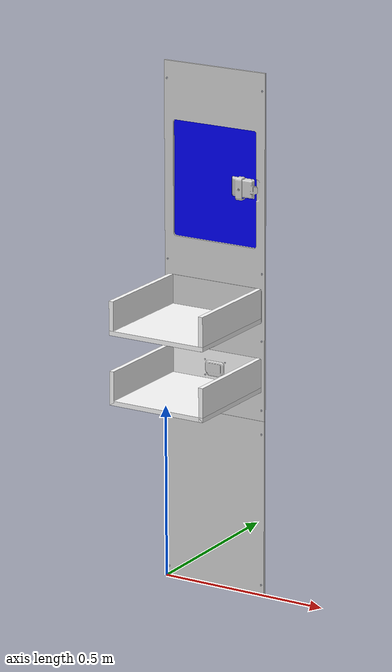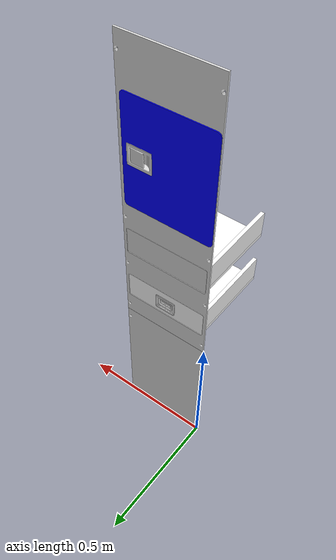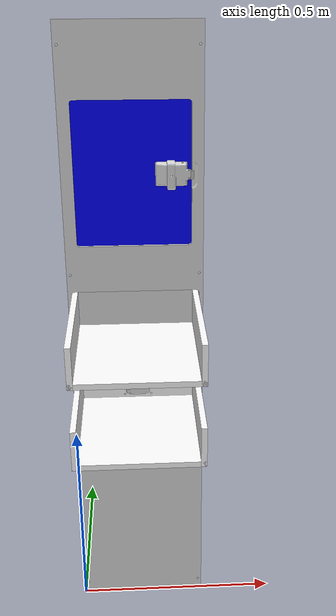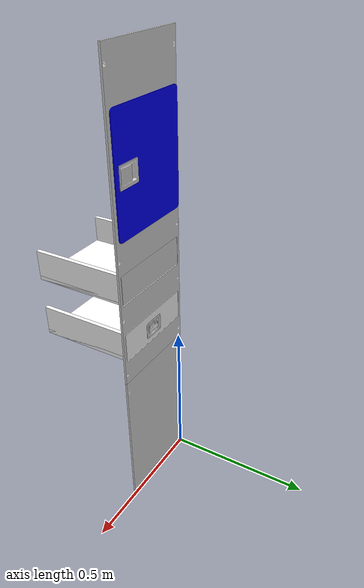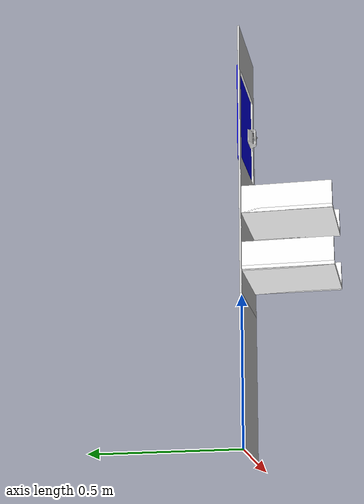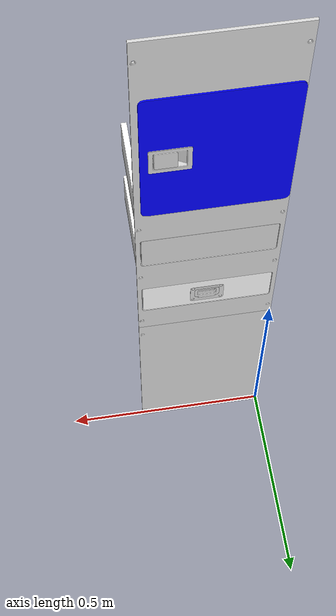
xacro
<?xml version="1.0"?>
<robot xmlns:xacro="http://wiki.ros.org/xacro" name="trainer_side">
  <xacro:arg name="prefix" default=""/>

  <xacro:include filename="$(find trainer)/urdf/colors.xacro"/>
  <xacro:include filename="$(find trainer)/urdf/trainer_side.xacro"/>

  <link name="world"/>

  <xacro:side_face prefix="$(arg prefix)" parent="world">
    <origin xyz="0 0 0" rpy="0 0 0"/>
  </xacro:side_face>

</robot>

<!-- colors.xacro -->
<robot xmlns:xacro="http://wiki.ros.org/xacro" name="trainer_side">

  <material name="red">
    <color rgba="1.0 0 0 1"/>
  </material>

  <material name="green">
    <color rgba="0 1.0 0 1"/>
  </material>

  <material name="blue">
    <color rgba="0 0 1.0 1"/>
  </material>

  <material name="gray">
    <color rgba="0.85 0.85 0.85 1.0"/>
  </material>

  <material name="white">
    <color rgba="1.0 1.0 1.0 1.0"/>
  </material>

</robot>

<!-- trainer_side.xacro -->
<robot xmlns:xacro="http://wiki.ros.org/xacro">

  <xacro:macro name="side_face" params="
    prefix:=''
    parent:=''
    *origin">

    <joint name="${prefix}trainer_side_face_base_joint" type="fixed">
      <parent link="${parent}"/>
      <child link="${prefix}side_bottom_face"/>
      <xacro:insert_block name="origin"/>
    </joint>

    <link name="${prefix}side_bottom_face">
      <!--TODO set proper inertia-->
      <inertial>
        <origin rpy="0 0 0" xyz="0.0 0.0 0.0"/>
        <mass value="0.1"/>
        <inertia ixx="0.1" ixy="0.0" ixz="0.0" iyy="0.1" iyz="0.0" izz="0.1"/>
      </inertial>
      <visual>
        <origin xyz="0.0 0.0 0.0" rpy="0 0 0"/>
        <geometry>
          <mesh filename="package://trainer/meshes/visual/side_bottom_face.stl"/>
        </geometry>
        <material name="gray"/>
      </visual>
      <collision>
        <origin xyz="0.0 0.0 0.0" rpy="0 0 0"/>
          <geometry>
            <mesh filename="package://trainer/meshes/collision/side_bottom_face.stl"/>
          </geometry>
        <material name="red"/>
      </collision>
    </link>

    <joint name="${prefix}side_top_face_joint" type="fixed">
      <parent link="${prefix}side_bottom_face"/>
      <child link="${prefix}side_top_face"/>
      <origin xyz="0.0 0.0 0.5084191" rpy="0 0 0"/>
    </joint>

    <link name="${prefix}side_top_face">
      <!--TODO set proper inertia-->
      <inertial>
        <origin rpy="0 0 0" xyz="0.0 0.0 0.0"/>
        <mass value="0.1"/>
        <inertia ixx="0.1" ixy="0.0" ixz="0.0" iyy="0.1" iyz="0.0" izz="0.1"/>
      </inertial>
      <visual>
        <origin xyz="0.0 0.0 0.0" rpy="0 0 0"/>
        <geometry>
          <mesh filename="package://trainer/meshes/visual/side_top_face.stl"/>
        </geometry>
        <material name="gray"/>
      </visual>
      <collision>
        <origin xyz="0.0 0.0 0.0" rpy="0 0 0"/>
          <geometry>
            <mesh filename="package://trainer/meshes/collision/side_top_face.stl"/>
          </geometry>
        <material name="red"/>
      </collision>
    </link>

  <joint name="${prefix}cabinet_4_joint" type="revolute">
    <axis xyz="0 0 1"/>
    <limit effort="10.0" lower="0.0" upper="3.14" velocity="0.5"/>
    <parent link="${prefix}side_top_face"/>
    <child link="${prefix}cabinet_4"/>
    <origin xyz="-0.0018 0.017 0.484" rpy="0 0 0"/>
    <dynamics friction="3.0" damping="3.0"/>
  </joint>

  <link name="${prefix}cabinet_4">
    <!--TODO set proper inertia-->
    <inertial>
      <origin rpy="0 0 0" xyz="0.0 0.0 0.0"/>
      <mass value="0.1"/>
      <inertia ixx="0.1" ixy="0.0" ixz="0.0" iyy="0.1" iyz="0.0" izz="0.1"/>
    </inertial>
    <visual>
      <origin xyz="0.00305 -0.0106 0.0" rpy="0 0 0"/>
      <geometry>
        <mesh filename="package://trainer/meshes/visual/cabinet_door_4.stl"/>
      </geometry>
      <material name="blue"/>
    </visual>
    <collision>
      <origin xyz="0.00305 -0.0106 0.0" rpy="0 0 0"/>
      <geometry>
        <mesh filename="package://trainer/meshes/collision/cabinet_door_4.stl"/>
      </geometry>
      <material name="red"/>
    </collision>
  </link>

  <joint name="${prefix}paddle_latch_housing_joint" type="fixed">
    <parent link="${prefix}cabinet_4"/>
    <child link="${prefix}paddle_latch_housing"/>
    <origin xyz="0.2043 -0.007 0.1313" rpy="0 0 0"/>
  </joint>

  <link name="${prefix}paddle_latch_housing">
    <!--TODO set proper inertia-->
    <inertial>
      <origin rpy="0 0 0" xyz="0.0 0.0 0.0"/>
      <mass value="0.1"/>
      <inertia ixx="0.1" ixy="0.0" ixz="0.0" iyy="0.1" iyz="0.0" izz="0.1"/>
    </inertial>
    <visual>
      <origin xyz="0.00305 0.0 0.00305" rpy="0 0 0"/>
      <geometry>
        <mesh filename="package://trainer/meshes/visual/paddle_latch_housing.stl"/>
      </geometry>
      <material name="gray"/>
    </visual>
    <collision>
      <origin xyz="0.00305 0.0 0.00305" rpy="0 0 0"/>
      <geometry>
        <mesh filename="package://trainer/meshes/collision/paddle_latch_housing.stl"/>
      </geometry>
      <material name="red"/>
    </collision>
  </link>

  <joint name="${prefix}paddle_latch_handle_joint" type="revolute">
    <axis xyz="0 0 -1"/>
    <limit effort="10.0" lower="0.0" upper="0.785375" velocity="0.5"/>
    <parent link="${prefix}paddle_latch_housing"/>
    <child link="${prefix}paddle_latch_handle"/>
    <origin xyz="0.06693 -0.003531 0.0107" rpy="0 0 0"/>
    <dynamics friction="3.0" damping="3.0"/>
  </joint>

  <link name="${prefix}paddle_latch_handle">
    <!--TODO set proper inertia-->
    <inertial>
      <origin rpy="0 0 0" xyz="0.0 0.0 0.0"/>
      <mass value="0.1"/>
      <inertia ixx="0.1" ixy="0.0" ixz="0.0" iyy="0.1" iyz="0.0" izz="0.1"/>
    </inertial>
    <visual>
      <origin xyz="0.0 0.0 0.0" rpy="0 0 0"/>
      <geometry>
        <mesh filename="package://trainer/meshes/visual/paddle_latch_handle.stl"/>
      </geometry>
      <material name="gray"/>
    </visual>
    <collision>
      <origin xyz="0.0 0.0 0.0" rpy="0 0 0"/>
      <geometry>
        <mesh filename="package://trainer/meshes/collision/paddle_latch_handle.stl"/>
      </geometry>
      <material name="red"/>
    </collision>
  </link>

  <joint name="${prefix}drawer_1_joint" type="prismatic">
    <axis xyz="0 1 0"/>
    <limit effort="10.0" lower="0.0" upper="0.305" velocity="0.5"/>
    <parent link="${prefix}side_top_face"/>
    <child link="${prefix}drawer_1_face"/>
    <origin xyz="0.011 0.003 0.283" rpy="0 0 0"/>
    <dynamics friction="3.0" damping="3.0"/>
  </joint>

  <link name="${prefix}drawer_1_face">
    <!--TODO set proper inertia-->
    <inertial>
      <origin rpy="0 0 0" xyz="0.0 0.0 0.0"/>
      <mass value="0.1"/>
      <inertia ixx="0.1" ixy="0.0" ixz="0.0" iyy="0.1" iyz="0.0" izz="0.1"/>
    </inertial>
    <visual>
      <origin xyz="0.0 0.0 0.0" rpy="0 0 0"/>
      <geometry>
        <mesh filename="package://trainer/meshes/visual/drawer_1_face.stl"/>
      </geometry>
      <material name="gray"/>
    </visual>
    <collision>
      <origin xyz="0.0 0.0 0.0" rpy="0 0 0"/>
      <geometry>
        <mesh filename="package://trainer/meshes/collision/drawer_1_face.stl"/>
      </geometry>
      <material name="red"/>
    </collision>
  </link>

  <joint name="${prefix}drawer_1_left_joint" type="fixed">
    <parent link="${prefix}drawer_1_face"/>
    <child link="${prefix}drawer_1_left"/>
    <origin xyz="${0.293 - 0.013} -0.305 -0.00435" rpy="0 0 0"/>
  </joint>

  <link name="${prefix}drawer_1_left">
    <!--TODO set proper inertia-->
    <inertial>
      <origin rpy="0 0 0" xyz="0.0 0.0 0.0"/>
      <mass value="0.1"/>
      <inertia ixx="0.1" ixy="0.0" ixz="0.0" iyy="0.1" iyz="0.0" izz="0.1"/>
    </inertial>
    <visual>
      <origin xyz="${0.013/2} ${0.305/2} ${0.096/2}" rpy="0 0 0"/>
      <geometry>
        <box size="0.013 0.305 0.096"/>
      </geometry>
      <material name="white"/>
    </visual>
    <collision>
      <origin xyz="${0.013/2} ${0.305/2} ${0.096/2}" rpy="0 0 0"/>
      <geometry>
        <box size="0.013 0.305 0.096"/>
      </geometry>
      <material name="red"/>
    </collision>
  </link>

  <joint name="${prefix}drawer_1_right_joint" type="fixed">
    <parent link="${prefix}drawer_1_face"/>
    <child link="${prefix}drawer_1_right"/>
    <origin xyz="0.0 -0.305 -0.00435" rpy="0 0 0"/>
  </joint>

  <link name="${prefix}drawer_1_right">
    <!--TODO set proper inertia-->
    <inertial>
      <origin rpy="0 0 0" xyz="0.0 0.0 0.0"/>
      <mass value="0.1"/>
      <inertia ixx="0.1" ixy="0.0" ixz="0.0" iyy="0.1" iyz="0.0" izz="0.1"/>
    </inertial>
    <visual>
      <origin xyz="${0.013/2} ${0.305/2} ${0.096/2}" rpy="0 0 0"/>
      <geometry>
        <box size="0.013 0.305 0.096"/>
      </geometry>
      <material name="white"/>
    </visual>
    <collision>
      <origin xyz="${0.013/2} ${0.305/2} ${0.096/2}" rpy="0 0 0"/>
      <geometry>
        <box size="0.013 0.305 0.096"/>
      </geometry>
      <material name="red"/>
    </collision>
  </link>

  <joint name="${prefix}drawer_1_bottom_joint" type="fixed">
    <parent link="${prefix}drawer_1_face"/>
    <child link="${prefix}drawer_1_bottom"/>
    <origin xyz="0.0 -0.305 -0.00435" rpy="0 0 0"/>
  </joint>

  <link name="${prefix}drawer_1_bottom">
    <!--TODO set proper inertia-->
    <inertial>
      <origin rpy="0 0 0" xyz="0.0 0.0 0.0"/>
      <mass value="0.1"/>
      <inertia ixx="0.1" ixy="0.0" ixz="0.0" iyy="0.1" iyz="0.0" izz="0.1"/>
    </inertial>
    <visual>
      <origin xyz="${0.293/2} ${0.305/2} ${0.013/2}" rpy="0 0 0"/>
      <geometry>
        <box size="0.293 0.305 0.013"/>
      </geometry>
      <material name="white"/>
    </visual>
    <collision>
      <origin xyz="${0.293/2} ${0.305/2} ${0.013/2}" rpy="0 0 0"/>
      <geometry>
        <box size="0.293 0.305 0.013"/>
      </geometry>
      <material name="red"/>
    </collision>
  </link>

  <joint name="${prefix}drawer_2_joint" type="prismatic">
    <axis xyz="0 1 0"/>
    <limit effort="10.0" lower="0.0" upper="0.2921" velocity="0.5"/>
    <parent link="${prefix}side_top_face"/>
    <child link="${prefix}drawer_2_face"/>
    <origin xyz="0.011 0.003 0.086" rpy="0 0 0"/>
    <dynamics friction="3.0" damping="3.0"/>
  </joint>

  <link name="${prefix}drawer_2_face">
    <!--TODO set proper inertia-->
    <inertial>
      <origin rpy="0 0 0" xyz="0.0 0.0 0.0"/>
      <mass value="0.1"/>
      <inertia ixx="0.1" ixy="0.0" ixz="0.0" iyy="0.1" iyz="0.0" izz="0.1"/>
    </inertial>
    <visual>
      <origin xyz="0.0 0.0 0.0" rpy="0 0 0"/>
      <geometry>
        <mesh filename="package://trainer/meshes/visual/drawer_2_face.stl"/>
      </geometry>
      <material name="white"/>
    </visual>
    <collision>
      <origin xyz="0.0 0.0 0.0" rpy="0 0 0"/>
      <geometry>
        <mesh filename="package://trainer/meshes/collision/drawer_2_face.stl"/>
      </geometry>
      <material name="red"/>
    </collision>
  </link>

  <joint name="${prefix}recessed_latch_housing_joint" type="fixed">
    <parent link="${prefix}drawer_2_face"/>
    <child link="${prefix}recessed_latch_housing"/>
    <origin xyz="0.1148 0.003175 0.0165" rpy="0 0 0"/>
  </joint>

  <link name="${prefix}recessed_latch_housing">
    <!--TODO set proper inertia-->
    <inertial>
      <origin rpy="0 0 0" xyz="0.0 0.0 0.0"/>
      <mass value="0.1"/>
      <inertia ixx="0.1" ixy="0.0" ixz="0.0" iyy="0.1" iyz="0.0" izz="0.1"/>
    </inertial>
    <visual>
      <origin xyz="0.0 0.0 0.0" rpy="0 0 0"/>
      <geometry>
        <mesh filename="package://trainer/meshes/visual/recessed_latch_housing.stl"/>
      </geometry>
      <material name="gray"/>
    </visual>
    <collision>
      <origin xyz="0.0 0.0 0.0" rpy="0 0 0"/>
      <geometry>
        <mesh filename="package://trainer/meshes/collision/recessed_latch_housing.stl"/>
      </geometry>
      <material name="red"/>
    </collision>
  </link>

  <joint name="${prefix}recessed_latch_handle_joint" type="revolute">
    <axis xyz="-1 0 0"/>
    <limit effort="10.0" lower="0.0" upper="${pi/2}" velocity="0.5"/>
    <parent link="${prefix}recessed_latch_housing"/>
    <child link="${prefix}recessed_latch_handle"/>
    <origin xyz="0.0508 -0.001778 0.006477" rpy="0 0 0"/>
    <dynamics friction="3.0" damping="3.0"/>
  </joint>

  <link name="${prefix}recessed_latch_handle">
    <!--TODO set proper inertia-->
    <inertial>
      <origin rpy="0 0 0" xyz="0.0 0.0 0.0"/>
      <mass value="0.1"/>
      <inertia ixx="0.1" ixy="0.0" ixz="0.0" iyy="0.1" iyz="0.0" izz="0.1"/>
    </inertial>
    <visual>
      <origin xyz="0.0 0.0 0.0" rpy="0 0 0"/>
      <geometry>
        <mesh filename="package://trainer/meshes/visual/recessed_latch_handle.stl"/>
      </geometry>
      <material name="gray"/>
    </visual>
    <collision>
      <origin xyz="0.0 0.0 0.0" rpy="0 0 0"/>
      <geometry>
        <mesh filename="package://trainer/meshes/collision/recessed_latch_handle.stl"/>
      </geometry>
      <material name="red"/>
    </collision>
  </link>

  <joint name="${prefix}drawer_2_left_joint" type="fixed">
    <parent link="${prefix}drawer_2_face"/>
    <child link="${prefix}drawer_2_left"/>
    <origin xyz="${0.293 - 0.013} -0.305 -0.00435" rpy="0 0 0"/>
  </joint>

  <link name="${prefix}drawer_2_left">
    <!--TODO set proper inertia-->
    <inertial>
      <origin rpy="0 0 0" xyz="0.0 0.0 0.0"/>
      <mass value="0.1"/>
      <inertia ixx="0.1" ixy="0.0" ixz="0.0" iyy="0.1" iyz="0.0" izz="0.1"/>
    </inertial>
    <visual>
      <origin xyz="${0.013/2} ${0.305/2} ${0.096/2}" rpy="0 0 0"/>
      <geometry>
        <box size="0.013 0.305 0.096"/>
      </geometry>
      <material name="white"/>
    </visual>
    <collision>
      <origin xyz="${0.013/2} ${0.305/2} ${0.096/2}" rpy="0 0 0"/>
      <geometry>
        <box size="0.013 0.305 0.096"/>
      </geometry>
      <material name="red"/>
    </collision>
  </link>

  <joint name="${prefix}drawer_2_right_joint" type="fixed">
    <parent link="${prefix}drawer_2_face"/>
    <child link="${prefix}drawer_2_right"/>
    <origin xyz="0.0 -0.305 -0.00435" rpy="0 0 0"/>
  </joint>

  <link name="${prefix}drawer_2_right">
    <!--TODO set proper inertia-->
    <inertial>
      <origin rpy="0 0 0" xyz="0.0 0.0 0.0"/>
      <mass value="0.1"/>
      <inertia ixx="0.1" ixy="0.0" ixz="0.0" iyy="0.1" iyz="0.0" izz="0.1"/>
    </inertial>
    <visual>
      <origin xyz="${0.013/2} ${0.305/2} ${0.096/2}" rpy="0 0 0"/>
      <geometry>
        <box size="0.013 0.305 0.096"/>
      </geometry>
      <material name="white"/>
    </visual>
    <collision>
      <origin xyz="${0.013/2} ${0.305/2} ${0.096/2}" rpy="0 0 0"/>
      <geometry>
        <box size="0.013 0.305 0.096"/>
      </geometry>
      <material name="red"/>
    </collision>
  </link>

  <joint name="${prefix}drawer_2_bottom_joint" type="fixed">
    <parent link="${prefix}drawer_2_face"/>
    <child link="${prefix}drawer_2_bottom"/>
    <origin xyz="0.0 -0.305 -0.00435" rpy="0 0 0"/>
  </joint>

  <link name="${prefix}drawer_2_bottom">
    <!--TODO set proper inertia-->
    <inertial>
      <origin rpy="0 0 0" xyz="0.0 0.0 0.0"/>
      <mass value="0.1"/>
      <inertia ixx="0.1" ixy="0.0" ixz="0.0" iyy="0.1" iyz="0.0" izz="0.1"/>
    </inertial>
    <visual>
      <origin xyz="${0.293/2} ${0.305/2} ${0.013/2}" rpy="0 0 0"/>
      <geometry>
        <box size="0.293 0.305 0.013"/>
      </geometry>
      <material name="white"/>
    </visual>
    <collision>
      <origin xyz="${0.293/2} ${0.305/2} ${0.013/2}" rpy="0 0 0"/>
      <geometry>
        <box size="0.293 0.305 0.013"/>
      </geometry>
      <material name="red"/>
    </collision>
  </link>

  </xacro:macro>
</robot>
